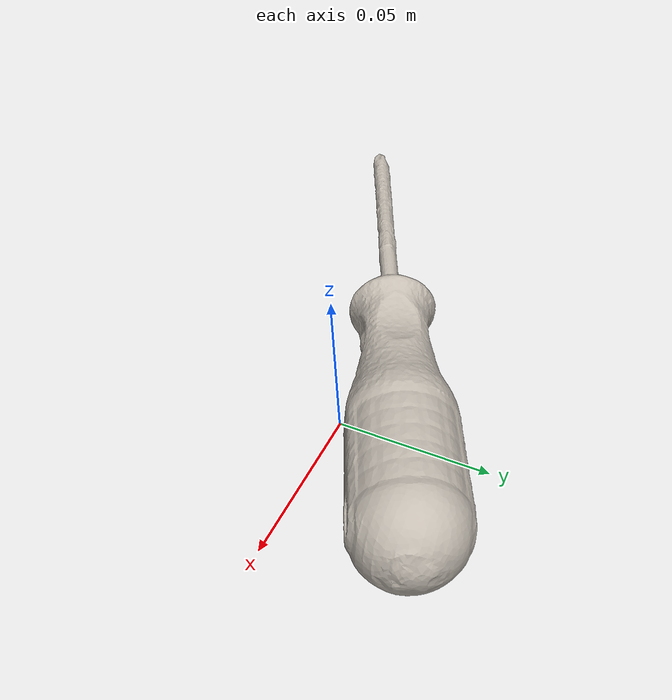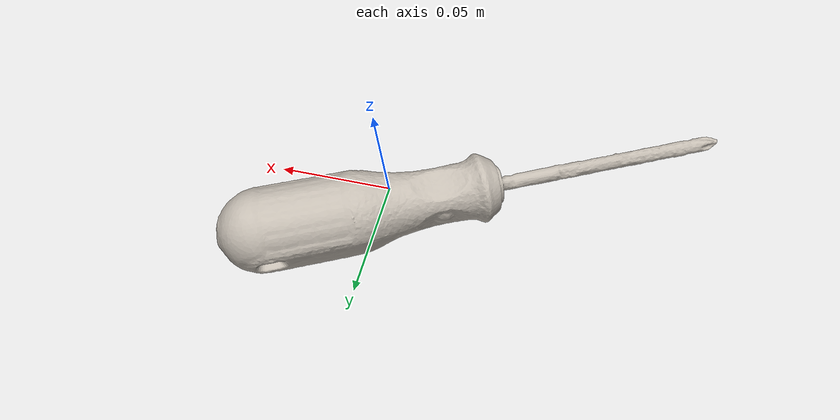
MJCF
<mujoco model="phillips_screwdriver">
  <compiler angle="radian" meshdir="assets" texturedir="assets"/>
    <default>
        <default class="ycb_col">
            <geom contype="1" conaffinity="1" group="3" rgba=".4 .5 .6 1"/>
        </default>
        <default class="ycb_viz">
            <geom contype="0" conaffinity="0" type="mesh" mass="0"/>
        </default>
    </default>
  <asset>
    <texture type="2d" name="phillips_screwdriver_tex" file="texture_map.png"/>
    <material name="phillips_screwdriver_mat" texture="phillips_screwdriver_tex" specular="0.5" shininess="0.5"/>
    <mesh file="textured.obj" name="phillips_screwdriver"/>
    <mesh file="textured_collision_0.obj" name="phillips_screwdriver_collision_0"/>
    <mesh file="textured_collision_1.obj" name="phillips_screwdriver_collision_1"/>
    <mesh file="textured_collision_2.obj" name="phillips_screwdriver_collision_2"/>
    <mesh file="textured_collision_3.obj" name="phillips_screwdriver_collision_3"/>
  </asset>
  <worldbody>
      <geom material="phillips_screwdriver_mat" mesh="phillips_screwdriver" class="ycb_viz"/>
      <geom mesh="phillips_screwdriver_collision_0" class="ycb_col" conaffinity="1" condim="4" friction="0.1 0.1 0.1" mass="0.0034718932512893047" rgba="1 1 1 1" solimp="0.99 0.99 0.01" solref=".001 0.1" type="mesh" group="3"/>
      <geom mesh="phillips_screwdriver_collision_1" class="ycb_col" conaffinity="1" condim="4" friction="0.1 0.1 0.1" mass="0.054355224386303455" rgba="1 1 1 1" solimp="0.99 0.99 0.01" solref=".001 0.1" type="mesh" group="3"/>
      <geom mesh="phillips_screwdriver_collision_2" class="ycb_col" conaffinity="1" condim="4" friction="0.1 0.1 0.1" mass="0.00829542581498919" rgba="1 1 1 1" solimp="0.99 0.99 0.01" solref=".001 0.1" type="mesh" group="3"/>
      <geom mesh="phillips_screwdriver_collision_3" class="ycb_col" conaffinity="1" condim="4" friction="0.1 0.1 0.1" mass="0.0038774565474180693" rgba="1 1 1 1" solimp="0.99 0.99 0.01" solref=".001 0.1" type="mesh" group="3"/>
  </worldbody>
</mujoco>
